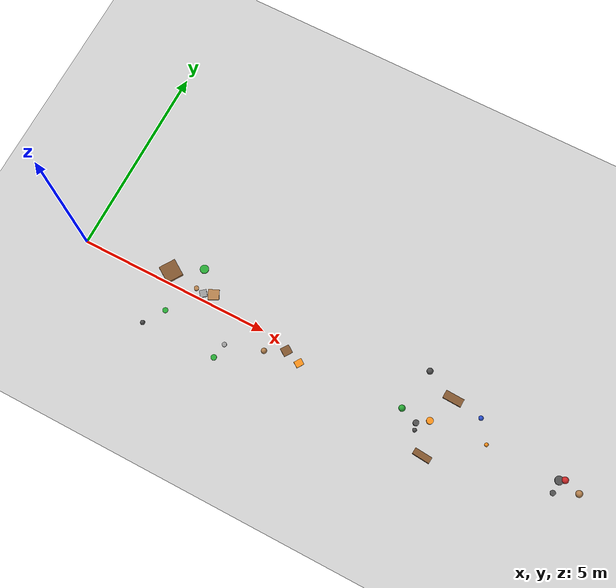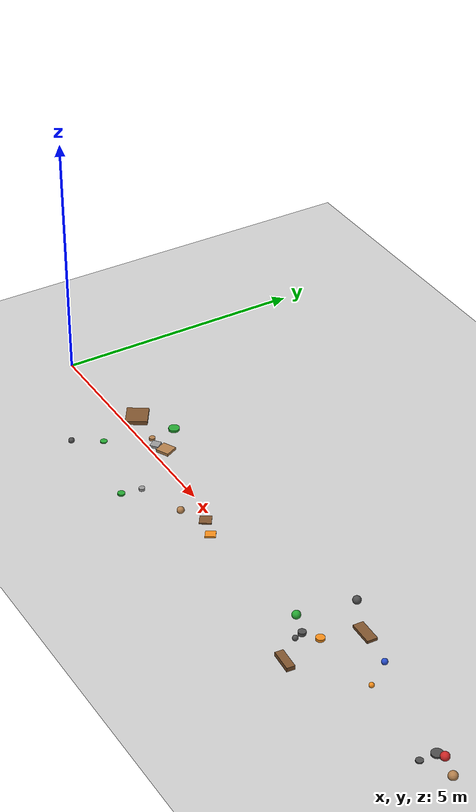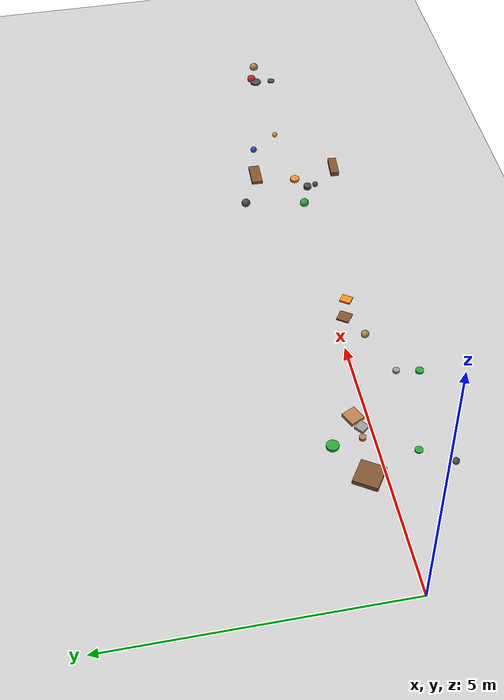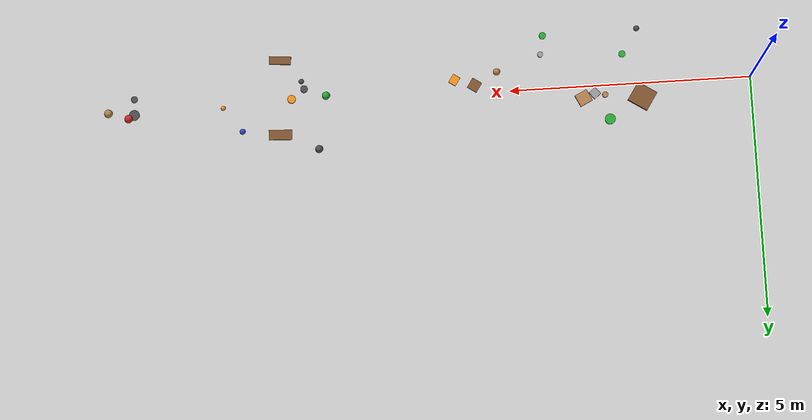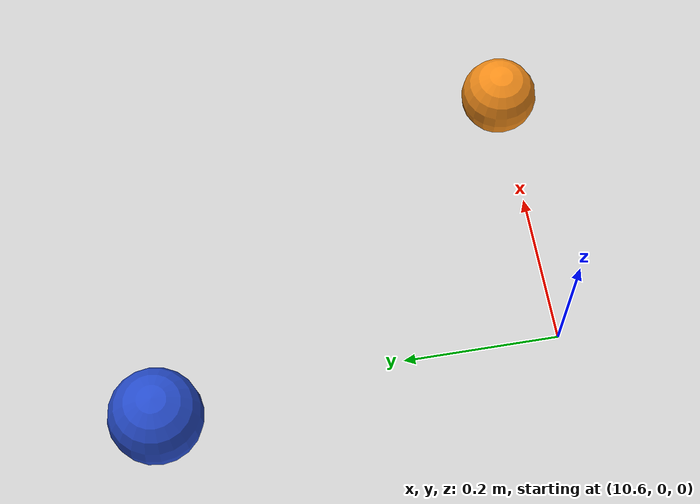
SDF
<?xml version="1.0" ?>
<!-- 由 omni_world.py 自动生成: scene=random seed=8 -->
<sdf version="1.5">
  <world name="random">
    <physics type="ode">
      <type>world</type>
      <max_step_size>0.001</max_step_size>
      <real_time_update_rate>1000</real_time_update_rate>
      <iters>500</iters>
    </physics>
    <include><uri>model://sun</uri></include>
    <include><uri>model://ground_plane</uri></include>
    <model name="r_box_0">
      <static>true</static>
      <pose>6.130 -0.299 0.017 0.0000 0.0000 2.5487</pose>
      <link name="link">
        <collision name="collision">
          <geometry><box><size>0.165 0.198 0.034</size></box></geometry>
          <surface><friction><ode><mu>1.0</mu><mu2>1.0</mu2></ode></friction></surface>
        </collision>
        <visual name="visual">
          <geometry><box><size>0.165 0.198 0.034</size></box></geometry>
          <material><script><uri>file://media/materials/scripts/gazebo.material</uri>
            <name>Gazebo/Orange</name></script></material>
        </visual>
      </link>
    </model>
    <model name="r_cyl_1">
      <static>true</static>
      <pose>9.523 -0.098 0.026 0 0 0</pose>
      <link name="link">
        <collision name="collision">
          <geometry><cylinder><radius>0.085</radius><length>0.052</length></cylinder></geometry>
          <surface><friction><ode><mu>1.0</mu><mu2>1.0</mu2></ode></friction></surface>
        </collision>
        <visual name="visual">
          <geometry><cylinder><radius>0.085</radius><length>0.052</length></cylinder></geometry>
          <material><script><uri>file://media/materials/scripts/gazebo.material</uri>
            <name>Gazebo/Orange</name></script></material>
        </visual>
      </link>
    </model>
    <model name="r_cyl_2">
      <static>true</static>
      <pose>2.620 -0.638 0.011 0 0 0</pose>
      <link name="link">
        <collision name="collision">
          <geometry><cylinder><radius>0.069</radius><length>0.021</length></cylinder></geometry>
          <surface><friction><ode><mu>1.0</mu><mu2>1.0</mu2></ode></friction></surface>
        </collision>
        <visual name="visual">
          <geometry><cylinder><radius>0.069</radius><length>0.021</length></cylinder></geometry>
          <material><script><uri>file://media/materials/scripts/gazebo.material</uri>
            <name>Gazebo/Green</name></script></material>
        </visual>
      </link>
    </model>
    <model name="r_cyl_3">
      <static>true</static>
      <pose>12.776 -0.290 0.014 0 0 0</pose>
      <link name="link">
        <collision name="collision">
          <geometry><cylinder><radius>0.068</radius><length>0.028</length></cylinder></geometry>
          <surface><friction><ode><mu>1.0</mu><mu2>1.0</mu2></ode></friction></surface>
        </collision>
        <visual name="visual">
          <geometry><cylinder><radius>0.068</radius><length>0.028</length></cylinder></geometry>
          <material><script><uri>file://media/materials/scripts/gazebo.material</uri>
            <name>Gazebo/DarkGrey</name></script></material>
        </visual>
      </link>
    </model>
    <model name="r_cyl_4">
      <static>true</static>
      <pose>9.252 -0.295 0.033 0 0 0</pose>
      <link name="link">
        <collision name="collision">
          <geometry><cylinder><radius>0.074</radius><length>0.066</length></cylinder></geometry>
          <surface><friction><ode><mu>1.0</mu><mu2>1.0</mu2></ode></friction></surface>
        </collision>
        <visual name="visual">
          <geometry><cylinder><radius>0.074</radius><length>0.066</length></cylinder></geometry>
          <material><script><uri>file://media/materials/scripts/gazebo.material</uri>
            <name>Gazebo/DarkGrey</name></script></material>
        </visual>
      </link>
    </model>
    <model name="r_cyl_5">
      <static>true</static>
      <pose>12.792 0.040 0.017 0 0 0</pose>
      <link name="link">
        <collision name="collision">
          <geometry><cylinder><radius>0.107</radius><length>0.035</length></cylinder></geometry>
          <surface><friction><ode><mu>1.0</mu><mu2>1.0</mu2></ode></friction></surface>
        </collision>
        <visual name="visual">
          <geometry><cylinder><radius>0.107</radius><length>0.035</length></cylinder></geometry>
          <material><script><uri>file://media/materials/scripts/gazebo.material</uri>
            <name>Gazebo/DarkGrey</name></script></material>
        </visual>
      </link>
    </model>
    <model name="r_sph_6">
      <static>true</static>
      <pose>13.326 -0.027 0.017 0 0 0</pose>
      <link name="link">
        <collision name="collision">
          <geometry><sphere><radius>0.087</radius></sphere></geometry>
          <surface><friction><ode><mu>1.0</mu><mu2>1.0</mu2></ode></friction></surface>
        </collision>
        <visual name="visual">
          <geometry><sphere><radius>0.087</radius></sphere></geometry>
          <material><script><uri>file://media/materials/scripts/gazebo.material</uri>
            <name>Gazebo/Wood</name></script></material>
        </visual>
      </link>
    </model>
    <model name="r_sph_7">
      <static>true</static>
      <pose>8.805 -0.132 0.030 0 0 0</pose>
      <link name="link">
        <collision name="collision">
          <geometry><sphere><radius>0.083</radius></sphere></geometry>
          <surface><friction><ode><mu>1.0</mu><mu2>1.0</mu2></ode></friction></surface>
        </collision>
        <visual name="visual">
          <geometry><sphere><radius>0.083</radius></sphere></geometry>
          <material><script><uri>file://media/materials/scripts/gazebo.material</uri>
            <name>Gazebo/Green</name></script></material>
        </visual>
      </link>
    </model>
    <model name="r_box_8">
      <static>true</static>
      <pose>3.479 0.243 0.029 0.0000 0.0000 2.0229</pose>
      <link name="link">
        <collision name="collision">
          <geometry><box><size>0.260 0.275 0.057</size></box></geometry>
          <surface><friction><ode><mu>1.0</mu><mu2>1.0</mu2></ode></friction></surface>
        </collision>
        <visual name="visual">
          <geometry><box><size>0.260 0.275 0.057</size></box></geometry>
          <material><script><uri>file://media/materials/scripts/gazebo.material</uri>
            <name>Gazebo/Wood</name></script></material>
        </visual>
      </link>
    </model>
    <model name="r_sph_9">
      <static>true</static>
      <pose>9.300 -0.459 0.022 0 0 0</pose>
      <link name="link">
        <collision name="collision">
          <geometry><sphere><radius>0.054</radius></sphere></geometry>
          <surface><friction><ode><mu>1.0</mu><mu2>1.0</mu2></ode></friction></surface>
        </collision>
        <visual name="visual">
          <geometry><sphere><radius>0.054</radius></sphere></geometry>
          <material><script><uri>file://media/materials/scripts/gazebo.material</uri>
            <name>Gazebo/DarkGrey</name></script></material>
        </visual>
      </link>
    </model>
    <model name="r_sph_10">
      <static>true</static>
      <pose>12.913 0.108 0.022 0 0 0</pose>
      <link name="link">
        <collision name="collision">
          <geometry><sphere><radius>0.085</radius></sphere></geometry>
          <surface><friction><ode><mu>1.0</mu><mu2>1.0</mu2></ode></friction></surface>
        </collision>
        <visual name="visual">
          <geometry><sphere><radius>0.085</radius></sphere></geometry>
          <material><script><uri>file://media/materials/scripts/gazebo.material</uri>
            <name>Gazebo/Red</name></script></material>
        </visual>
      </link>
    </model>
    <model name="r_cyl_11">
      <static>true</static>
      <pose>4.247 -1.119 0.019 0 0 0</pose>
      <link name="link">
        <collision name="collision">
          <geometry><cylinder><radius>0.071</radius><length>0.038</length></cylinder></geometry>
          <surface><friction><ode><mu>1.0</mu><mu2>1.0</mu2></ode></friction></surface>
        </collision>
        <visual name="visual">
          <geometry><cylinder><radius>0.071</radius><length>0.038</length></cylinder></geometry>
          <material><script><uri>file://media/materials/scripts/gazebo.material</uri>
            <name>Gazebo/Green</name></script></material>
        </visual>
      </link>
    </model>
    <model name="r_box_12">
      <static>true</static>
      <pose>9.718 -0.921 0.043 0.0000 0.0000 3.0570</pose>
      <link name="link">
        <collision name="collision">
          <geometry><box><size>0.448 0.159 0.085</size></box></geometry>
          <surface><friction><ode><mu>1.0</mu><mu2>1.0</mu2></ode></friction></surface>
        </collision>
        <visual name="visual">
          <geometry><box><size>0.448 0.159 0.085</size></box></geometry>
          <material><script><uri>file://media/materials/scripts/gazebo.material</uri>
            <name>Gazebo/Brown</name></script></material>
        </visual>
      </link>
    </model>
    <model name="r_cyl_13">
      <static>true</static>
      <pose>2.956 0.711 0.023 0 0 0</pose>
      <link name="link">
        <collision name="collision">
          <geometry><cylinder><radius>0.109</radius><length>0.047</length></cylinder></geometry>
          <surface><friction><ode><mu>1.0</mu><mu2>1.0</mu2></ode></friction></surface>
        </collision>
        <visual name="visual">
          <geometry><cylinder><radius>0.109</radius><length>0.047</length></cylinder></geometry>
          <material><script><uri>file://media/materials/scripts/gazebo.material</uri>
            <name>Gazebo/Green</name></script></material>
        </visual>
      </link>
    </model>
    <model name="r_box_14">
      <static>true</static>
      <pose>3.238 0.154 0.024 0.0000 0.0000 2.2520</pose>
      <link name="link">
        <collision name="collision">
          <geometry><box><size>0.178 0.174 0.049</size></box></geometry>
          <surface><friction><ode><mu>1.0</mu><mu2>1.0</mu2></ode></friction></surface>
        </collision>
        <visual name="visual">
          <geometry><box><size>0.178 0.174 0.049</size></box></geometry>
          <material><script><uri>file://media/materials/scripts/gazebo.material</uri>
            <name>Gazebo/Grey</name></script></material>
        </visual>
      </link>
    </model>
    <model name="r_box_15">
      <static>true</static>
      <pose>9.790 0.634 0.028 0.0000 0.0000 1.5338</pose>
      <link name="link">
        <collision name="collision">
          <geometry><box><size>0.204 0.478 0.057</size></box></geometry>
          <surface><friction><ode><mu>1.0</mu><mu2>1.0</mu2></ode></friction></surface>
        </collision>
        <visual name="visual">
          <geometry><box><size>0.204 0.478 0.057</size></box></geometry>
          <material><script><uri>file://media/materials/scripts/gazebo.material</uri>
            <name>Gazebo/Brown</name></script></material>
        </visual>
      </link>
    </model>
    <model name="r_sph_16">
      <static>true</static>
      <pose>2.287 -1.159 0.015 0 0 0</pose>
      <link name="link">
        <collision name="collision">
          <geometry><sphere><radius>0.059</radius></sphere></geometry>
          <surface><friction><ode><mu>1.0</mu><mu2>1.0</mu2></ode></friction></surface>
        </collision>
        <visual name="visual">
          <geometry><sphere><radius>0.059</radius></sphere></geometry>
          <material><script><uri>file://media/materials/scripts/gazebo.material</uri>
            <name>Gazebo/DarkGrey</name></script></material>
        </visual>
      </link>
    </model>
    <model name="r_sph_17">
      <static>true</static>
      <pose>5.243 -0.419 0.023 0 0 0</pose>
      <link name="link">
        <collision name="collision">
          <geometry><sphere><radius>0.072</radius></sphere></geometry>
          <surface><friction><ode><mu>1.0</mu><mu2>1.0</mu2></ode></friction></surface>
        </collision>
        <visual name="visual">
          <geometry><sphere><radius>0.072</radius></sphere></geometry>
          <material><script><uri>file://media/materials/scripts/gazebo.material</uri>
            <name>Gazebo/Wood</name></script></material>
        </visual>
      </link>
    </model>
    <model name="r_box_18">
      <static>true</static>
      <pose>2.258 0.281 0.041 0.0000 0.0000 2.5649</pose>
      <link name="link">
        <collision name="collision">
          <geometry><box><size>0.454 0.433 0.082</size></box></geometry>
          <surface><friction><ode><mu>1.0</mu><mu2>1.0</mu2></ode></friction></surface>
        </collision>
        <visual name="visual">
          <geometry><box><size>0.454 0.433 0.082</size></box></geometry>
          <material><script><uri>file://media/materials/scripts/gazebo.material</uri>
            <name>Gazebo/Brown</name></script></material>
        </visual>
      </link>
    </model>
    <model name="r_box_19">
      <static>true</static>
      <pose>5.719 -0.166 0.014 0.0000 0.0000 2.5490</pose>
      <link name="link">
        <collision name="collision">
          <geometry><box><size>0.220 0.228 0.028</size></box></geometry>
          <surface><friction><ode><mu>1.0</mu><mu2>1.0</mu2></ode></friction></surface>
        </collision>
        <visual name="visual">
          <geometry><box><size>0.220 0.228 0.028</size></box></geometry>
          <material><script><uri>file://media/materials/scripts/gazebo.material</uri>
            <name>Gazebo/Brown</name></script></material>
        </visual>
      </link>
    </model>
    <model name="r_cyl_20">
      <static>true</static>
      <pose>3.025 0.194 0.026 0 0 0</pose>
      <link name="link">
        <collision name="collision">
          <geometry><cylinder><radius>0.059</radius><length>0.052</length></cylinder></geometry>
          <surface><friction><ode><mu>1.0</mu><mu2>1.0</mu2></ode></friction></surface>
        </collision>
        <visual name="visual">
          <geometry><cylinder><radius>0.059</radius><length>0.052</length></cylinder></geometry>
          <material><script><uri>file://media/materials/scripts/gazebo.material</uri>
            <name>Gazebo/Wood</name></script></material>
        </visual>
      </link>
    </model>
    <model name="r_sph_21">
      <static>true</static>
      <pose>10.569 0.517 0.026 0 0 0</pose>
      <link name="link">
        <collision name="collision">
          <geometry><sphere><radius>0.060</radius></sphere></geometry>
          <surface><friction><ode><mu>1.0</mu><mu2>1.0</mu2></ode></friction></surface>
        </collision>
        <visual name="visual">
          <geometry><sphere><radius>0.060</radius></sphere></geometry>
          <material><script><uri>file://media/materials/scripts/gazebo.material</uri>
            <name>Gazebo/Blue</name></script></material>
        </visual>
      </link>
    </model>
    <model name="r_cyl_22">
      <static>true</static>
      <pose>4.319 -0.726 0.026 0 0 0</pose>
      <link name="link">
        <collision name="collision">
          <geometry><cylinder><radius>0.058</radius><length>0.051</length></cylinder></geometry>
          <surface><friction><ode><mu>1.0</mu><mu2>1.0</mu2></ode></friction></surface>
        </collision>
        <visual name="visual">
          <geometry><cylinder><radius>0.058</radius><length>0.051</length></cylinder></geometry>
          <material><script><uri>file://media/materials/scripts/gazebo.material</uri>
            <name>Gazebo/Grey</name></script></material>
        </visual>
      </link>
    </model>
    <model name="r_sph_23">
      <static>true</static>
      <pose>9.008 0.976 0.033 0 0 0</pose>
      <link name="link">
        <collision name="collision">
          <geometry><sphere><radius>0.081</radius></sphere></geometry>
          <surface><friction><ode><mu>1.0</mu><mu2>1.0</mu2></ode></friction></surface>
        </collision>
        <visual name="visual">
          <geometry><sphere><radius>0.081</radius></sphere></geometry>
          <material><script><uri>file://media/materials/scripts/gazebo.material</uri>
            <name>Gazebo/DarkGrey</name></script></material>
        </visual>
      </link>
    </model>
    <model name="r_sph_24">
      <static>true</static>
      <pose>10.945 0.006 0.035 0 0 0</pose>
      <link name="link">
        <collision name="collision">
          <geometry><sphere><radius>0.050</radius></sphere></geometry>
          <surface><friction><ode><mu>1.0</mu><mu2>1.0</mu2></ode></friction></surface>
        </collision>
        <visual name="visual">
          <geometry><sphere><radius>0.050</radius></sphere></geometry>
          <material><script><uri>file://media/materials/scripts/gazebo.material</uri>
            <name>Gazebo/Orange</name></script></material>
        </visual>
      </link>
    </model>

  </world>
</sdf>
